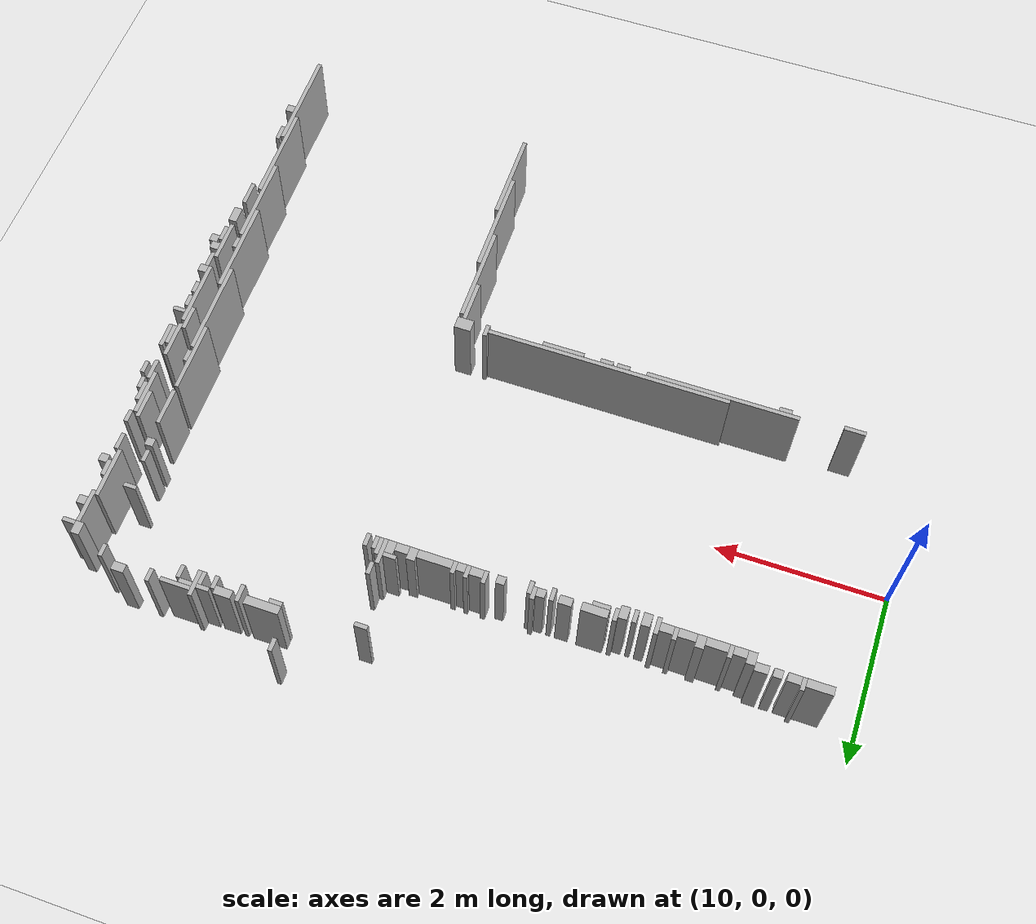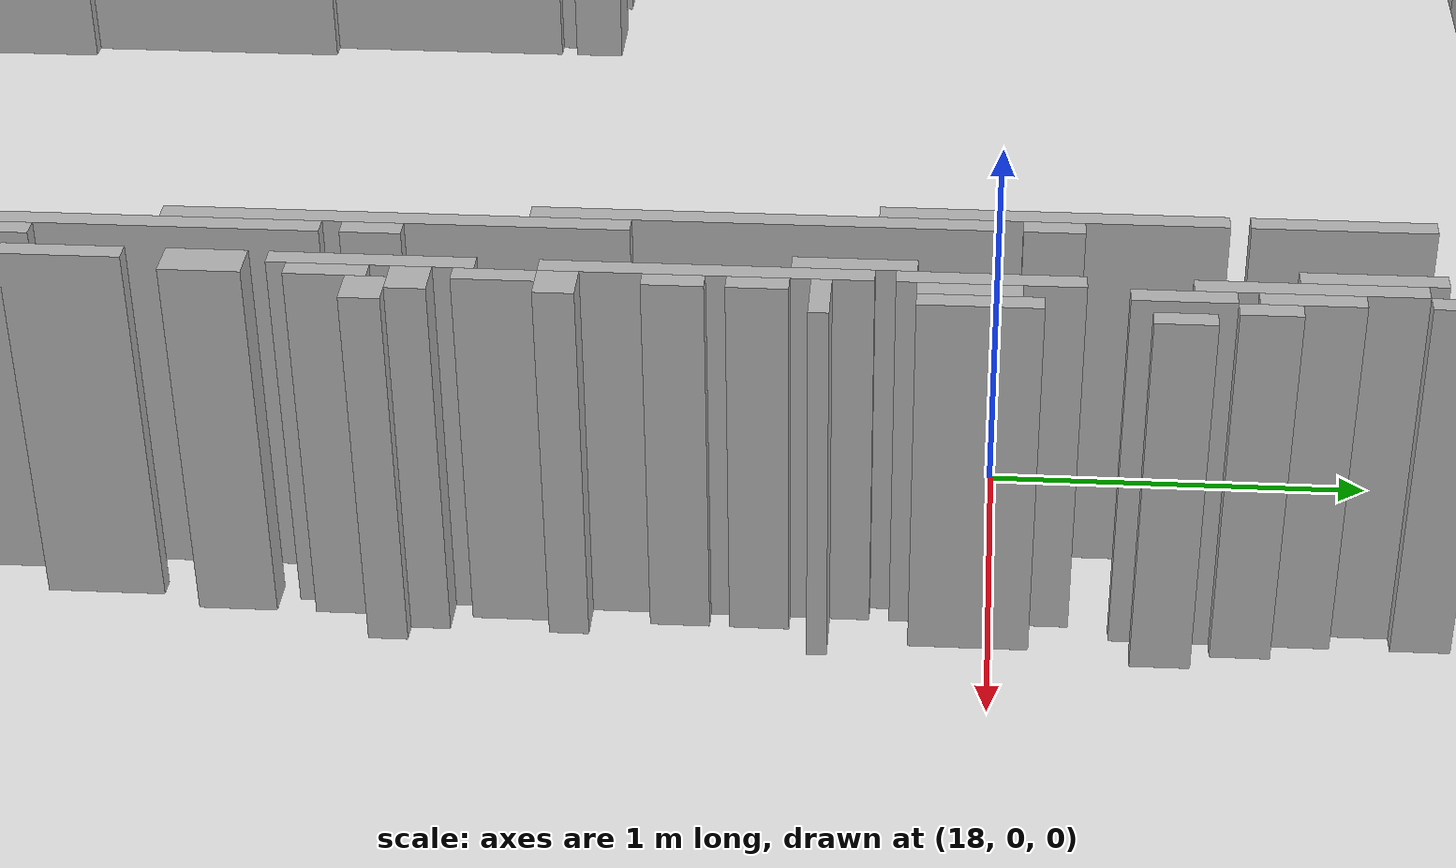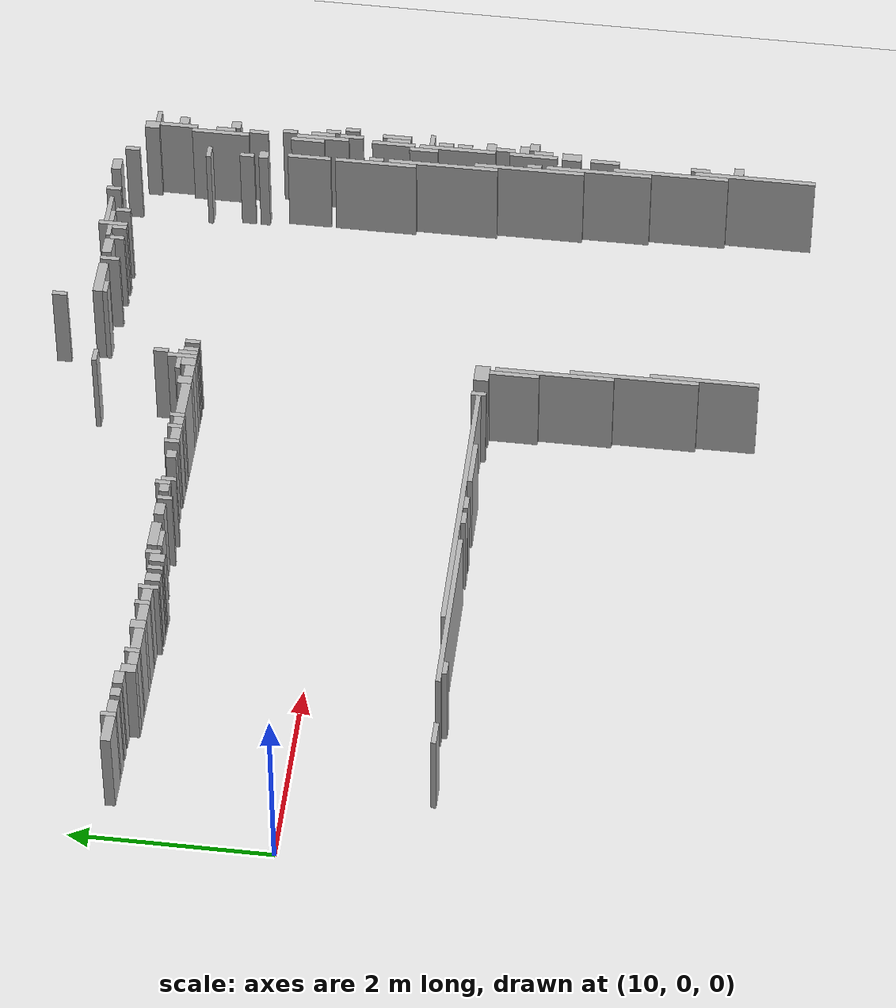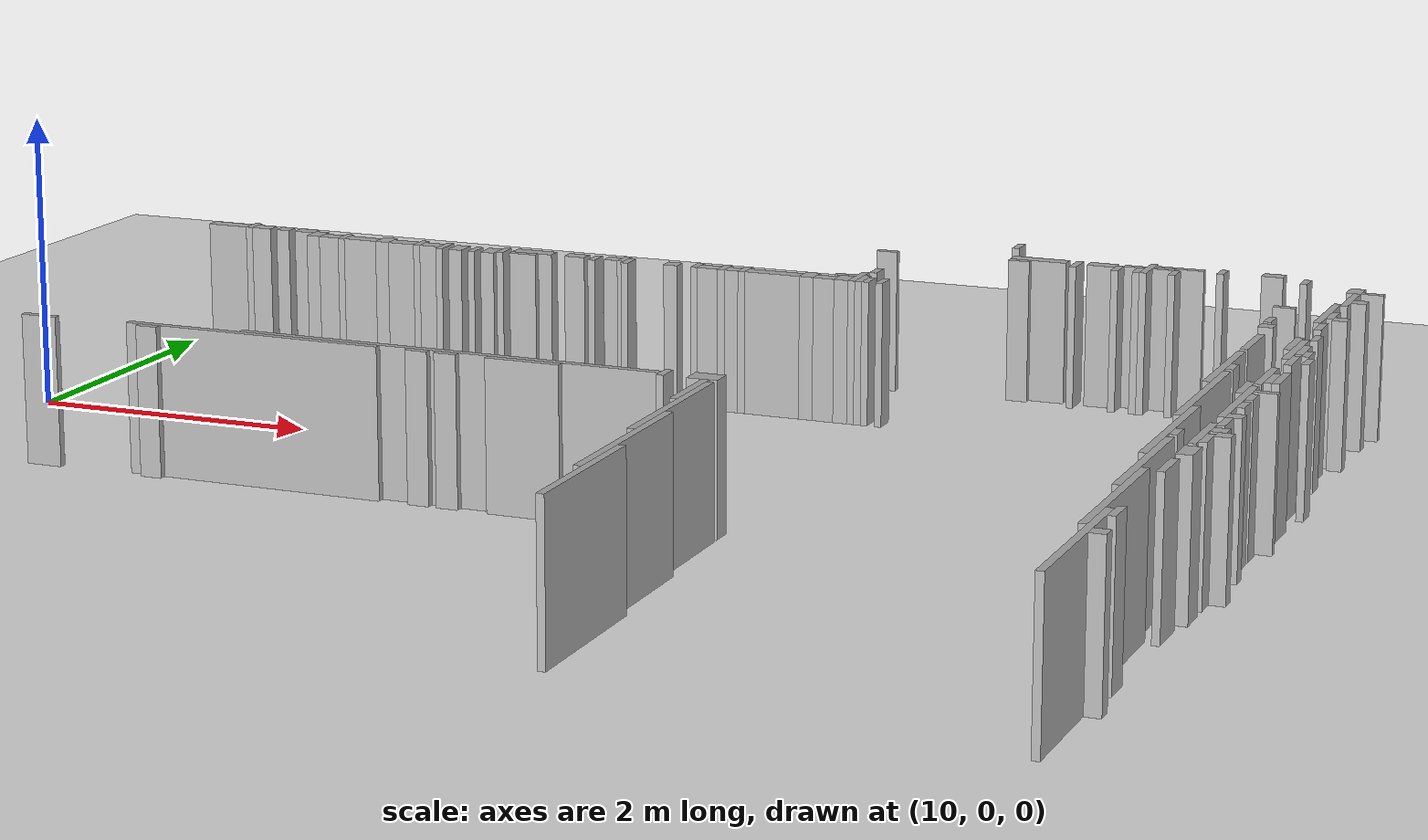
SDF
<sdf version="1.8">
 <world name="building">
  <model name="ground_plane">
   <static>true</static>
   <link name="link">
    <collision name="c"><geometry><plane><normal>0 0 1</normal><size>200 200</size></plane></geometry></collision>
    <visual name="v">
     <geometry><plane><normal>0 0 1</normal><size>200 200</size></plane></geometry>
     <material><ambient>0.9 0.9 0.9 1</ambient><diffuse>0.9 0.9 0.9 1</diffuse></material>
    </visual>
   </link>
  </model>
  <model name="walls">
   <static>true</static>
   <link name="wall_15">
    <pose>16.075 3.075 0.500 0 0 0</pose>
    <collision name="c"><geometry><box><size>0.050 0.150 1.000</size></box></geometry></collision>
    <visual name="v">
     <geometry><box><size>0.050 0.150 1.000</size></box></geometry>
     <material><ambient>0.6 0.6 0.6 1</ambient><diffuse>0.7 0.7 0.7 1</diffuse></material>
    </visual>
   </link>
   <link name="wall_16">
    <pose>17.125 2.700 0.500 0 0 0</pose>
    <collision name="c"><geometry><box><size>0.050 0.300 1.000</size></box></geometry></collision>
    <visual name="v">
     <geometry><box><size>0.050 0.300 1.000</size></box></geometry>
     <material><ambient>0.6 0.6 0.6 1</ambient><diffuse>0.7 0.7 0.7 1</diffuse></material>
    </visual>
   </link>
   <link name="wall_17">
    <pose>17.625 2.775 0.500 0 0 0</pose>
    <collision name="c"><geometry><box><size>0.050 0.150 1.000</size></box></geometry></collision>
    <visual name="v">
     <geometry><box><size>0.050 0.150 1.000</size></box></geometry>
     <material><ambient>0.6 0.6 0.6 1</ambient><diffuse>0.7 0.7 0.7 1</diffuse></material>
    </visual>
   </link>
   <link name="wall_18">
    <pose>17.975 2.800 0.500 0 0 0</pose>
    <collision name="c"><geometry><box><size>0.150 0.100 1.000</size></box></geometry></collision>
    <visual name="v">
     <geometry><box><size>0.150 0.100 1.000</size></box></geometry>
     <material><ambient>0.6 0.6 0.6 1</ambient><diffuse>0.7 0.7 0.7 1</diffuse></material>
    </visual>
   </link>
   <link name="wall_21">
    <pose>17.325 2.775 0.500 0 0 0</pose>
    <collision name="c"><geometry><box><size>0.350 0.050 1.000</size></box></geometry></collision>
    <visual name="v">
     <geometry><box><size>0.350 0.050 1.000</size></box></geometry>
     <material><ambient>0.6 0.6 0.6 1</ambient><diffuse>0.7 0.7 0.7 1</diffuse></material>
    </visual>
   </link>
   <link name="wall_23">
    <pose>16.350 2.700 0.500 0 0 0</pose>
    <collision name="c"><geometry><box><size>0.400 0.100 1.000</size></box></geometry></collision>
    <visual name="v">
     <geometry><box><size>0.400 0.100 1.000</size></box></geometry>
     <material><ambient>0.6 0.6 0.6 1</ambient><diffuse>0.7 0.7 0.7 1</diffuse></material>
    </visual>
   </link>
   <link name="wall_24">
    <pose>16.625 2.650 0.500 0 0 0</pose>
    <collision name="c"><geometry><box><size>0.050 0.200 1.000</size></box></geometry></collision>
    <visual name="v">
     <geometry><box><size>0.050 0.200 1.000</size></box></geometry>
     <material><ambient>0.6 0.6 0.6 1</ambient><diffuse>0.7 0.7 0.7 1</diffuse></material>
    </visual>
   </link>
   <link name="wall_25">
    <pose>16.800 2.700 0.500 0 0 0</pose>
    <collision name="c"><geometry><box><size>0.200 0.100 1.000</size></box></geometry></collision>
    <visual name="v">
     <geometry><box><size>0.200 0.100 1.000</size></box></geometry>
     <material><ambient>0.6 0.6 0.6 1</ambient><diffuse>0.7 0.7 0.7 1</diffuse></material>
    </visual>
   </link>
   <link name="wall_26">
    <pose>17.025 2.725 0.500 0 0 0</pose>
    <collision name="c"><geometry><box><size>0.150 0.050 1.000</size></box></geometry></collision>
    <visual name="v">
     <geometry><box><size>0.150 0.050 1.000</size></box></geometry>
     <material><ambient>0.6 0.6 0.6 1</ambient><diffuse>0.7 0.7 0.7 1</diffuse></material>
    </visual>
   </link>
   <link name="wall_27">
    <pose>17.225 2.725 0.500 0 0 0</pose>
    <collision name="c"><geometry><box><size>0.150 0.050 1.000</size></box></geometry></collision>
    <visual name="v">
     <geometry><box><size>0.150 0.050 1.000</size></box></geometry>
     <material><ambient>0.6 0.6 0.6 1</ambient><diffuse>0.7 0.7 0.7 1</diffuse></material>
    </visual>
   </link>
   <link name="wall_28">
    <pose>18.225 2.675 0.500 0 0 0</pose>
    <collision name="c"><geometry><box><size>0.050 0.150 1.000</size></box></geometry></collision>
    <visual name="v">
     <geometry><box><size>0.050 0.150 1.000</size></box></geometry>
     <material><ambient>0.6 0.6 0.6 1</ambient><diffuse>0.7 0.7 0.7 1</diffuse></material>
    </visual>
   </link>
   <link name="wall_29">
    <pose>16.925 2.625 0.500 0 0 0</pose>
    <collision name="c"><geometry><box><size>0.050 0.150 1.000</size></box></geometry></collision>
    <visual name="v">
     <geometry><box><size>0.050 0.150 1.000</size></box></geometry>
     <material><ambient>0.6 0.6 0.6 1</ambient><diffuse>0.7 0.7 0.7 1</diffuse></material>
    </visual>
   </link>
   <link name="wall_30">
    <pose>17.075 2.625 0.500 0 0 0</pose>
    <collision name="c"><geometry><box><size>0.050 0.150 1.000</size></box></geometry></collision>
    <visual name="v">
     <geometry><box><size>0.050 0.150 1.000</size></box></geometry>
     <material><ambient>0.6 0.6 0.6 1</ambient><diffuse>0.7 0.7 0.7 1</diffuse></material>
    </visual>
   </link>
   <link name="wall_31">
    <pose>17.325 2.625 0.500 0 0 0</pose>
    <collision name="c"><geometry><box><size>0.050 0.150 1.000</size></box></geometry></collision>
    <visual name="v">
     <geometry><box><size>0.050 0.150 1.000</size></box></geometry>
     <material><ambient>0.6 0.6 0.6 1</ambient><diffuse>0.7 0.7 0.7 1</diffuse></material>
    </visual>
   </link>
   <link name="wall_33">
    <pose>16.225 2.625 0.500 0 0 0</pose>
    <collision name="c"><geometry><box><size>0.150 0.050 1.000</size></box></geometry></collision>
    <visual name="v">
     <geometry><box><size>0.150 0.050 1.000</size></box></geometry>
     <material><ambient>0.6 0.6 0.6 1</ambient><diffuse>0.7 0.7 0.7 1</diffuse></material>
    </visual>
   </link>
   <link name="wall_35">
    <pose>15.275 2.575 0.500 0 0 0</pose>
    <collision name="c"><geometry><box><size>0.150 0.050 1.000</size></box></geometry></collision>
    <visual name="v">
     <geometry><box><size>0.150 0.050 1.000</size></box></geometry>
     <material><ambient>0.6 0.6 0.6 1</ambient><diffuse>0.7 0.7 0.7 1</diffuse></material>
    </visual>
   </link>
   <link name="wall_36">
    <pose>18.600 2.525 0.500 0 0 0</pose>
    <collision name="c"><geometry><box><size>0.100 0.150 1.000</size></box></geometry></collision>
    <visual name="v">
     <geometry><box><size>0.100 0.150 1.000</size></box></geometry>
     <material><ambient>0.6 0.6 0.6 1</ambient><diffuse>0.7 0.7 0.7 1</diffuse></material>
    </visual>
   </link>
   <link name="wall_39">
    <pose>18.725 2.475 0.500 0 0 0</pose>
    <collision name="c"><geometry><box><size>0.150 0.050 1.000</size></box></geometry></collision>
    <visual name="v">
     <geometry><box><size>0.150 0.050 1.000</size></box></geometry>
     <material><ambient>0.6 0.6 0.6 1</ambient><diffuse>0.7 0.7 0.7 1</diffuse></material>
    </visual>
   </link>
   <link name="wall_40">
    <pose>18.625 2.250 0.500 0 0 0</pose>
    <collision name="c"><geometry><box><size>0.050 0.400 1.000</size></box></geometry></collision>
    <visual name="v">
     <geometry><box><size>0.050 0.400 1.000</size></box></geometry>
     <material><ambient>0.6 0.6 0.6 1</ambient><diffuse>0.7 0.7 0.7 1</diffuse></material>
    </visual>
   </link>
   <link name="wall_48">
    <pose>18.700 2.200 0.500 0 0 0</pose>
    <collision name="c"><geometry><box><size>0.100 0.100 1.000</size></box></geometry></collision>
    <visual name="v">
     <geometry><box><size>0.100 0.100 1.000</size></box></geometry>
     <material><ambient>0.6 0.6 0.6 1</ambient><diffuse>0.7 0.7 0.7 1</diffuse></material>
    </visual>
   </link>
   <link name="wall_67">
    <pose>18.575 1.800 0.500 0 0 0</pose>
    <collision name="c"><geometry><box><size>0.050 0.600 1.000</size></box></geometry></collision>
    <visual name="v">
     <geometry><box><size>0.050 0.600 1.000</size></box></geometry>
     <material><ambient>0.6 0.6 0.6 1</ambient><diffuse>0.7 0.7 0.7 1</diffuse></material>
    </visual>
   </link>
   <link name="wall_80">
    <pose>15.425 1.925 0.500 0 0 0</pose>
    <collision name="c"><geometry><box><size>0.050 0.150 1.000</size></box></geometry></collision>
    <visual name="v">
     <geometry><box><size>0.050 0.150 1.000</size></box></geometry>
     <material><ambient>0.6 0.6 0.6 1</ambient><diffuse>0.7 0.7 0.7 1</diffuse></material>
    </visual>
   </link>
   <link name="wall_88">
    <pose>18.275 1.875 0.500 0 0 0</pose>
    <collision name="c"><geometry><box><size>0.150 0.050 1.000</size></box></geometry></collision>
    <visual name="v">
     <geometry><box><size>0.150 0.050 1.000</size></box></geometry>
     <material><ambient>0.6 0.6 0.6 1</ambient><diffuse>0.7 0.7 0.7 1</diffuse></material>
    </visual>
   </link>
   <link name="wall_93">
    <pose>15.375 1.700 0.500 0 0 0</pose>
    <collision name="c"><geometry><box><size>0.050 0.300 1.000</size></box></geometry></collision>
    <visual name="v">
     <geometry><box><size>0.050 0.300 1.000</size></box></geometry>
     <material><ambient>0.6 0.6 0.6 1</ambient><diffuse>0.7 0.7 0.7 1</diffuse></material>
    </visual>
   </link>
   <link name="wall_94">
    <pose>18.625 1.750 0.500 0 0 0</pose>
    <collision name="c"><geometry><box><size>0.050 0.200 1.000</size></box></geometry></collision>
    <visual name="v">
     <geometry><box><size>0.050 0.200 1.000</size></box></geometry>
     <material><ambient>0.6 0.6 0.6 1</ambient><diffuse>0.7 0.7 0.7 1</diffuse></material>
    </visual>
   </link>
   <link name="wall_98">
    <pose>10.725 1.675 0.500 0 0 0</pose>
    <collision name="c"><geometry><box><size>0.050 0.150 1.000</size></box></geometry></collision>
    <visual name="v">
     <geometry><box><size>0.050 0.150 1.000</size></box></geometry>
     <material><ambient>0.6 0.6 0.6 1</ambient><diffuse>0.7 0.7 0.7 1</diffuse></material>
    </visual>
   </link>
   <link name="wall_99">
    <pose>15.275 1.725 0.500 0 0 0</pose>
    <collision name="c"><geometry><box><size>0.150 0.050 1.000</size></box></geometry></collision>
    <visual name="v">
     <geometry><box><size>0.150 0.050 1.000</size></box></geometry>
     <material><ambient>0.6 0.6 0.6 1</ambient><diffuse>0.7 0.7 0.7 1</diffuse></material>
    </visual>
   </link>
   <link name="wall_100">
    <pose>15.425 1.650 0.500 0 0 0</pose>
    <collision name="c"><geometry><box><size>0.050 0.200 1.000</size></box></geometry></collision>
    <visual name="v">
     <geometry><box><size>0.050 0.200 1.000</size></box></geometry>
     <material><ambient>0.6 0.6 0.6 1</ambient><diffuse>0.7 0.7 0.7 1</diffuse></material>
    </visual>
   </link>
   <link name="wall_103">
    <pose>10.550 1.650 0.500 0 0 0</pose>
    <collision name="c"><geometry><box><size>0.300 0.100 1.000</size></box></geometry></collision>
    <visual name="v">
     <geometry><box><size>0.300 0.100 1.000</size></box></geometry>
     <material><ambient>0.6 0.6 0.6 1</ambient><diffuse>0.7 0.7 0.7 1</diffuse></material>
    </visual>
   </link>
   <link name="wall_104">
    <pose>10.825 1.650 0.500 0 0 0</pose>
    <collision name="c"><geometry><box><size>0.150 0.100 1.000</size></box></geometry></collision>
    <visual name="v">
     <geometry><box><size>0.150 0.100 1.000</size></box></geometry>
     <material><ambient>0.6 0.6 0.6 1</ambient><diffuse>0.7 0.7 0.7 1</diffuse></material>
    </visual>
   </link>
   <link name="wall_105">
    <pose>11.000 1.650 0.500 0 0 0</pose>
    <collision name="c"><geometry><box><size>0.100 0.100 1.000</size></box></geometry></collision>
    <visual name="v">
     <geometry><box><size>0.100 0.100 1.000</size></box></geometry>
     <material><ambient>0.6 0.6 0.6 1</ambient><diffuse>0.7 0.7 0.7 1</diffuse></material>
    </visual>
   </link>
   <link name="wall_106">
    <pose>11.175 1.650 0.500 0 0 0</pose>
    <collision name="c"><geometry><box><size>0.150 0.100 1.000</size></box></geometry></collision>
    <visual name="v">
     <geometry><box><size>0.150 0.100 1.000</size></box></geometry>
     <material><ambient>0.6 0.6 0.6 1</ambient><diffuse>0.7 0.7 0.7 1</diffuse></material>
    </visual>
   </link>
   <link name="wall_107">
    <pose>13.675 1.625 0.500 0 0 0</pose>
    <collision name="c"><geometry><box><size>0.050 0.150 1.000</size></box></geometry></collision>
    <visual name="v">
     <geometry><box><size>0.050 0.150 1.000</size></box></geometry>
     <material><ambient>0.6 0.6 0.6 1</ambient><diffuse>0.7 0.7 0.7 1</diffuse></material>
    </visual>
   </link>
   <link name="wall_108">
    <pose>14.225 1.625 0.500 0 0 0</pose>
    <collision name="c"><geometry><box><size>0.050 0.150 1.000</size></box></geometry></collision>
    <visual name="v">
     <geometry><box><size>0.050 0.150 1.000</size></box></geometry>
     <material><ambient>0.6 0.6 0.6 1</ambient><diffuse>0.7 0.7 0.7 1</diffuse></material>
    </visual>
   </link>
   <link name="wall_109">
    <pose>14.425 1.625 0.500 0 0 0</pose>
    <collision name="c"><geometry><box><size>0.050 0.150 1.000</size></box></geometry></collision>
    <visual name="v">
     <geometry><box><size>0.050 0.150 1.000</size></box></geometry>
     <material><ambient>0.6 0.6 0.6 1</ambient><diffuse>0.7 0.7 0.7 1</diffuse></material>
    </visual>
   </link>
   <link name="wall_110">
    <pose>14.575 1.625 0.500 0 0 0</pose>
    <collision name="c"><geometry><box><size>0.050 0.150 1.000</size></box></geometry></collision>
    <visual name="v">
     <geometry><box><size>0.050 0.150 1.000</size></box></geometry>
     <material><ambient>0.6 0.6 0.6 1</ambient><diffuse>0.7 0.7 0.7 1</diffuse></material>
    </visual>
   </link>
   <link name="wall_111">
    <pose>15.050 1.625 0.500 0 0 0</pose>
    <collision name="c"><geometry><box><size>0.100 0.150 1.000</size></box></geometry></collision>
    <visual name="v">
     <geometry><box><size>0.100 0.150 1.000</size></box></geometry>
     <material><ambient>0.6 0.6 0.6 1</ambient><diffuse>0.7 0.7 0.7 1</diffuse></material>
    </visual>
   </link>
   <link name="wall_112">
    <pose>15.300 1.625 0.500 0 0 0</pose>
    <collision name="c"><geometry><box><size>0.100 0.150 1.000</size></box></geometry></collision>
    <visual name="v">
     <geometry><box><size>0.100 0.150 1.000</size></box></geometry>
     <material><ambient>0.6 0.6 0.6 1</ambient><diffuse>0.7 0.7 0.7 1</diffuse></material>
    </visual>
   </link>
   <link name="wall_113">
    <pose>15.475 1.625 0.500 0 0 0</pose>
    <collision name="c"><geometry><box><size>0.050 0.150 1.000</size></box></geometry></collision>
    <visual name="v">
     <geometry><box><size>0.050 0.150 1.000</size></box></geometry>
     <material><ambient>0.6 0.6 0.6 1</ambient><diffuse>0.7 0.7 0.7 1</diffuse></material>
    </visual>
   </link>
   <link name="wall_114">
    <pose>15.575 1.625 0.500 0 0 0</pose>
    <collision name="c"><geometry><box><size>0.050 0.150 1.000</size></box></geometry></collision>
    <visual name="v">
     <geometry><box><size>0.050 0.150 1.000</size></box></geometry>
     <material><ambient>0.6 0.6 0.6 1</ambient><diffuse>0.7 0.7 0.7 1</diffuse></material>
    </visual>
   </link>
   <link name="wall_115">
    <pose>18.700 1.650 0.500 0 0 0</pose>
    <collision name="c"><geometry><box><size>0.100 0.100 1.000</size></box></geometry></collision>
    <visual name="v">
     <geometry><box><size>0.100 0.100 1.000</size></box></geometry>
     <material><ambient>0.6 0.6 0.6 1</ambient><diffuse>0.7 0.7 0.7 1</diffuse></material>
    </visual>
   </link>
   <link name="wall_126">
    <pose>11.300 1.575 0.500 0 0 0</pose>
    <collision name="c"><geometry><box><size>0.100 0.150 1.000</size></box></geometry></collision>
    <visual name="v">
     <geometry><box><size>0.100 0.150 1.000</size></box></geometry>
     <material><ambient>0.6 0.6 0.6 1</ambient><diffuse>0.7 0.7 0.7 1</diffuse></material>
    </visual>
   </link>
   <link name="wall_127">
    <pose>11.525 1.575 0.500 0 0 0</pose>
    <collision name="c"><geometry><box><size>0.050 0.150 1.000</size></box></geometry></collision>
    <visual name="v">
     <geometry><box><size>0.050 0.150 1.000</size></box></geometry>
     <material><ambient>0.6 0.6 0.6 1</ambient><diffuse>0.7 0.7 0.7 1</diffuse></material>
    </visual>
   </link>
   <link name="wall_128">
    <pose>11.850 1.575 0.500 0 0 0</pose>
    <collision name="c"><geometry><box><size>0.100 0.150 1.000</size></box></geometry></collision>
    <visual name="v">
     <geometry><box><size>0.100 0.150 1.000</size></box></geometry>
     <material><ambient>0.6 0.6 0.6 1</ambient><diffuse>0.7 0.7 0.7 1</diffuse></material>
    </visual>
   </link>
   <link name="wall_129">
    <pose>12.125 1.575 0.500 0 0 0</pose>
    <collision name="c"><geometry><box><size>0.050 0.150 1.000</size></box></geometry></collision>
    <visual name="v">
     <geometry><box><size>0.050 0.150 1.000</size></box></geometry>
     <material><ambient>0.6 0.6 0.6 1</ambient><diffuse>0.7 0.7 0.7 1</diffuse></material>
    </visual>
   </link>
   <link name="wall_130">
    <pose>12.325 1.550 0.500 0 0 0</pose>
    <collision name="c"><geometry><box><size>0.050 0.200 1.000</size></box></geometry></collision>
    <visual name="v">
     <geometry><box><size>0.050 0.200 1.000</size></box></geometry>
     <material><ambient>0.6 0.6 0.6 1</ambient><diffuse>0.7 0.7 0.7 1</diffuse></material>
    </visual>
   </link>
   <link name="wall_131">
    <pose>12.775 1.575 0.500 0 0 0</pose>
    <collision name="c"><geometry><box><size>0.050 0.150 1.000</size></box></geometry></collision>
    <visual name="v">
     <geometry><box><size>0.050 0.150 1.000</size></box></geometry>
     <material><ambient>0.6 0.6 0.6 1</ambient><diffuse>0.7 0.7 0.7 1</diffuse></material>
    </visual>
   </link>
   <link name="wall_132">
    <pose>13.000 1.600 0.500 0 0 0</pose>
    <collision name="c"><geometry><box><size>0.300 0.100 1.000</size></box></geometry></collision>
    <visual name="v">
     <geometry><box><size>0.300 0.100 1.000</size></box></geometry>
     <material><ambient>0.6 0.6 0.6 1</ambient><diffuse>0.7 0.7 0.7 1</diffuse></material>
    </visual>
   </link>
   <link name="wall_133">
    <pose>13.325 1.600 0.500 0 0 0</pose>
    <collision name="c"><geometry><box><size>0.150 0.100 1.000</size></box></geometry></collision>
    <visual name="v">
     <geometry><box><size>0.150 0.100 1.000</size></box></geometry>
     <material><ambient>0.6 0.6 0.6 1</ambient><diffuse>0.7 0.7 0.7 1</diffuse></material>
    </visual>
   </link>
   <link name="wall_134">
    <pose>13.475 1.575 0.500 0 0 0</pose>
    <collision name="c"><geometry><box><size>0.050 0.150 1.000</size></box></geometry></collision>
    <visual name="v">
     <geometry><box><size>0.050 0.150 1.000</size></box></geometry>
     <material><ambient>0.6 0.6 0.6 1</ambient><diffuse>0.7 0.7 0.7 1</diffuse></material>
    </visual>
   </link>
   <link name="wall_135">
    <pose>13.600 1.600 0.500 0 0 0</pose>
    <collision name="c"><geometry><box><size>0.100 0.100 1.000</size></box></geometry></collision>
    <visual name="v">
     <geometry><box><size>0.100 0.100 1.000</size></box></geometry>
     <material><ambient>0.6 0.6 0.6 1</ambient><diffuse>0.7 0.7 0.7 1</diffuse></material>
    </visual>
   </link>
   <link name="wall_136">
    <pose>13.725 1.575 0.500 0 0 0</pose>
    <collision name="c"><geometry><box><size>0.050 0.150 1.000</size></box></geometry></collision>
    <visual name="v">
     <geometry><box><size>0.050 0.150 1.000</size></box></geometry>
     <material><ambient>0.6 0.6 0.6 1</ambient><diffuse>0.7 0.7 0.7 1</diffuse></material>
    </visual>
   </link>
   <link name="wall_137">
    <pose>14.050 1.600 0.500 0 0 0</pose>
    <collision name="c"><geometry><box><size>0.100 0.100 1.000</size></box></geometry></collision>
    <visual name="v">
     <geometry><box><size>0.100 0.100 1.000</size></box></geometry>
     <material><ambient>0.6 0.6 0.6 1</ambient><diffuse>0.7 0.7 0.7 1</diffuse></material>
    </visual>
   </link>
   <link name="wall_138">
    <pose>14.325 1.600 0.500 0 0 0</pose>
    <collision name="c"><geometry><box><size>0.150 0.100 1.000</size></box></geometry></collision>
    <visual name="v">
     <geometry><box><size>0.150 0.100 1.000</size></box></geometry>
     <material><ambient>0.6 0.6 0.6 1</ambient><diffuse>0.7 0.7 0.7 1</diffuse></material>
    </visual>
   </link>
   <link name="wall_139">
    <pose>14.500 1.600 0.500 0 0 0</pose>
    <collision name="c"><geometry><box><size>0.100 0.100 1.000</size></box></geometry></collision>
    <visual name="v">
     <geometry><box><size>0.100 0.100 1.000</size></box></geometry>
     <material><ambient>0.6 0.6 0.6 1</ambient><diffuse>0.7 0.7 0.7 1</diffuse></material>
    </visual>
   </link>
   <link name="wall_140">
    <pose>14.800 1.600 0.500 0 0 0</pose>
    <collision name="c"><geometry><box><size>0.400 0.100 1.000</size></box></geometry></collision>
    <visual name="v">
     <geometry><box><size>0.400 0.100 1.000</size></box></geometry>
     <material><ambient>0.6 0.6 0.6 1</ambient><diffuse>0.7 0.7 0.7 1</diffuse></material>
    </visual>
   </link>
   <link name="wall_141">
    <pose>15.175 1.600 0.500 0 0 0</pose>
    <collision name="c"><geometry><box><size>0.150 0.100 1.000</size></box></geometry></collision>
    <visual name="v">
     <geometry><box><size>0.150 0.100 1.000</size></box></geometry>
     <material><ambient>0.6 0.6 0.6 1</ambient><diffuse>0.7 0.7 0.7 1</diffuse></material>
    </visual>
   </link>
   <link name="wall_166">
    <pose>11.425 1.550 0.500 0 0 0</pose>
    <collision name="c"><geometry><box><size>0.150 0.100 1.000</size></box></geometry></collision>
    <visual name="v">
     <geometry><box><size>0.150 0.100 1.000</size></box></geometry>
     <material><ambient>0.6 0.6 0.6 1</ambient><diffuse>0.7 0.7 0.7 1</diffuse></material>
    </visual>
   </link>
   <link name="wall_167">
    <pose>11.675 1.550 0.500 0 0 0</pose>
    <collision name="c"><geometry><box><size>0.250 0.100 1.000</size></box></geometry></collision>
    <visual name="v">
     <geometry><box><size>0.250 0.100 1.000</size></box></geometry>
     <material><ambient>0.6 0.6 0.6 1</ambient><diffuse>0.7 0.7 0.7 1</diffuse></material>
    </visual>
   </link>
   <link name="wall_168">
    <pose>12.000 1.550 0.500 0 0 0</pose>
    <collision name="c"><geometry><box><size>0.200 0.100 1.000</size></box></geometry></collision>
    <visual name="v">
     <geometry><box><size>0.200 0.100 1.000</size></box></geometry>
     <material><ambient>0.6 0.6 0.6 1</ambient><diffuse>0.7 0.7 0.7 1</diffuse></material>
    </visual>
   </link>
   <link name="wall_169">
    <pose>12.225 1.550 0.500 0 0 0</pose>
    <collision name="c"><geometry><box><size>0.150 0.100 1.000</size></box></geometry></collision>
    <visual name="v">
     <geometry><box><size>0.150 0.100 1.000</size></box></geometry>
     <material><ambient>0.6 0.6 0.6 1</ambient><diffuse>0.7 0.7 0.7 1</diffuse></material>
    </visual>
   </link>
   <link name="wall_170">
    <pose>12.450 1.525 0.500 0 0 0</pose>
    <collision name="c"><geometry><box><size>0.100 0.150 1.000</size></box></geometry></collision>
    <visual name="v">
     <geometry><box><size>0.100 0.150 1.000</size></box></geometry>
     <material><ambient>0.6 0.6 0.6 1</ambient><diffuse>0.7 0.7 0.7 1</diffuse></material>
    </visual>
   </link>
   <link name="wall_171">
    <pose>12.575 1.525 0.500 0 0 0</pose>
    <collision name="c"><geometry><box><size>0.050 0.150 1.000</size></box></geometry></collision>
    <visual name="v">
     <geometry><box><size>0.050 0.150 1.000</size></box></geometry>
     <material><ambient>0.6 0.6 0.6 1</ambient><diffuse>0.7 0.7 0.7 1</diffuse></material>
    </visual>
   </link>
   <link name="wall_172">
    <pose>12.700 1.525 0.500 0 0 0</pose>
    <collision name="c"><geometry><box><size>0.100 0.150 1.000</size></box></geometry></collision>
    <visual name="v">
     <geometry><box><size>0.100 0.150 1.000</size></box></geometry>
     <material><ambient>0.6 0.6 0.6 1</ambient><diffuse>0.7 0.7 0.7 1</diffuse></material>
    </visual>
   </link>
   <link name="wall_190">
    <pose>12.950 1.525 0.500 0 0 0</pose>
    <collision name="c"><geometry><box><size>0.200 0.050 1.000</size></box></geometry></collision>
    <visual name="v">
     <geometry><box><size>0.200 0.050 1.000</size></box></geometry>
     <material><ambient>0.6 0.6 0.6 1</ambient><diffuse>0.7 0.7 0.7 1</diffuse></material>
    </visual>
   </link>
   <link name="wall_191">
    <pose>18.275 1.475 0.500 0 0 0</pose>
    <collision name="c"><geometry><box><size>0.050 0.150 1.000</size></box></geometry></collision>
    <visual name="v">
     <geometry><box><size>0.050 0.150 1.000</size></box></geometry>
     <material><ambient>0.6 0.6 0.6 1</ambient><diffuse>0.7 0.7 0.7 1</diffuse></material>
    </visual>
   </link>
   <link name="wall_215">
    <pose>18.625 1.400 0.500 0 0 0</pose>
    <collision name="c"><geometry><box><size>0.050 0.200 1.000</size></box></geometry></collision>
    <visual name="v">
     <geometry><box><size>0.050 0.200 1.000</size></box></geometry>
     <material><ambient>0.6 0.6 0.6 1</ambient><diffuse>0.7 0.7 0.7 1</diffuse></material>
    </visual>
   </link>
   <link name="wall_259">
    <pose>18.300 1.300 0.500 0 0 0</pose>
    <collision name="c"><geometry><box><size>0.100 0.100 1.000</size></box></geometry></collision>
    <visual name="v">
     <geometry><box><size>0.100 0.100 1.000</size></box></geometry>
     <material><ambient>0.6 0.6 0.6 1</ambient><diffuse>0.7 0.7 0.7 1</diffuse></material>
    </visual>
   </link>
   <link name="wall_292">
    <pose>18.675 1.075 0.500 0 0 0</pose>
    <collision name="c"><geometry><box><size>0.050 0.150 1.000</size></box></geometry></collision>
    <visual name="v">
     <geometry><box><size>0.050 0.150 1.000</size></box></geometry>
     <material><ambient>0.6 0.6 0.6 1</ambient><diffuse>0.7 0.7 0.7 1</diffuse></material>
    </visual>
   </link>
   <link name="wall_294">
    <pose>18.325 0.825 0.500 0 0 0</pose>
    <collision name="c"><geometry><box><size>0.050 0.450 1.000</size></box></geometry></collision>
    <visual name="v">
     <geometry><box><size>0.050 0.450 1.000</size></box></geometry>
     <material><ambient>0.6 0.6 0.6 1</ambient><diffuse>0.7 0.7 0.7 1</diffuse></material>
    </visual>
   </link>
   <link name="wall_295">
    <pose>18.575 0.875 0.500 0 0 0</pose>
    <collision name="c"><geometry><box><size>0.050 0.350 1.000</size></box></geometry></collision>
    <visual name="v">
     <geometry><box><size>0.050 0.350 1.000</size></box></geometry>
     <material><ambient>0.6 0.6 0.6 1</ambient><diffuse>0.7 0.7 0.7 1</diffuse></material>
    </visual>
   </link>
   <link name="wall_296">
    <pose>18.625 0.725 0.500 0 0 0</pose>
    <collision name="c"><geometry><box><size>0.050 0.550 1.000</size></box></geometry></collision>
    <visual name="v">
     <geometry><box><size>0.050 0.550 1.000</size></box></geometry>
     <material><ambient>0.6 0.6 0.6 1</ambient><diffuse>0.7 0.7 0.7 1</diffuse></material>
    </visual>
   </link>
   <link name="wall_298">
    <pose>18.675 0.725 0.500 0 0 0</pose>
    <collision name="c"><geometry><box><size>0.050 0.250 1.000</size></box></geometry></collision>
    <visual name="v">
     <geometry><box><size>0.050 0.250 1.000</size></box></geometry>
     <material><ambient>0.6 0.6 0.6 1</ambient><diffuse>0.7 0.7 0.7 1</diffuse></material>
    </visual>
   </link>
   <link name="wall_303">
    <pose>18.725 0.625 0.500 0 0 0</pose>
    <collision name="c"><geometry><box><size>0.050 0.150 1.000</size></box></geometry></collision>
    <visual name="v">
     <geometry><box><size>0.050 0.150 1.000</size></box></geometry>
     <material><ambient>0.6 0.6 0.6 1</ambient><diffuse>0.7 0.7 0.7 1</diffuse></material>
    </visual>
   </link>
   <link name="wall_305">
    <pose>18.325 0.125 0.500 0 0 0</pose>
    <collision name="c"><geometry><box><size>0.050 0.850 1.000</size></box></geometry></collision>
    <visual name="v">
     <geometry><box><size>0.050 0.850 1.000</size></box></geometry>
     <material><ambient>0.6 0.6 0.6 1</ambient><diffuse>0.7 0.7 0.7 1</diffuse></material>
    </visual>
   </link>
   <link name="wall_306">
    <pose>18.675 0.425 0.500 0 0 0</pose>
    <collision name="c"><geometry><box><size>0.050 0.250 1.000</size></box></geometry></collision>
    <visual name="v">
     <geometry><box><size>0.050 0.250 1.000</size></box></geometry>
     <material><ambient>0.6 0.6 0.6 1</ambient><diffuse>0.7 0.7 0.7 1</diffuse></material>
    </visual>
   </link>
   <link name="wall_307">
    <pose>18.775 0.425 0.500 0 0 0</pose>
    <collision name="c"><geometry><box><size>0.050 0.150 1.000</size></box></geometry></collision>
    <visual name="v">
     <geometry><box><size>0.050 0.150 1.000</size></box></geometry>
     <material><ambient>0.6 0.6 0.6 1</ambient><diffuse>0.7 0.7 0.7 1</diffuse></material>
    </visual>
   </link>
   <link name="wall_310">
    <pose>18.375 0.125 0.500 0 0 0</pose>
    <collision name="c"><geometry><box><size>0.050 0.150 1.000</size></box></geometry></collision>
    <visual name="v">
     <geometry><box><size>0.050 0.150 1.000</size></box></geometry>
     <material><ambient>0.6 0.6 0.6 1</ambient><diffuse>0.7 0.7 0.7 1</diffuse></material>
    </visual>
   </link>
   <link name="wall_311">
    <pose>18.625 -0.025 0.500 0 0 0</pose>
    <collision name="c"><geometry><box><size>0.050 0.450 1.000</size></box></geometry></collision>
    <visual name="v">
     <geometry><box><size>0.050 0.450 1.000</size></box></geometry>
     <material><ambient>0.6 0.6 0.6 1</ambient><diffuse>0.7 0.7 0.7 1</diffuse></material>
    </visual>
   </link>
   <link name="wall_313">
    <pose>18.725 -0.050 0.500 0 0 0</pose>
    <collision name="c"><geometry><box><size>0.050 0.300 1.000</size></box></geometry></collision>
    <visual name="v">
     <geometry><box><size>0.050 0.300 1.000</size></box></geometry>
     <material><ambient>0.6 0.6 0.6 1</ambient><diffuse>0.7 0.7 0.7 1</diffuse></material>
    </visual>
   </link>
   <link name="wall_314">
    <pose>18.675 -0.075 0.500 0 0 0</pose>
    <collision name="c"><geometry><box><size>0.050 0.250 1.000</size></box></geometry></collision>
    <visual name="v">
     <geometry><box><size>0.050 0.250 1.000</size></box></geometry>
     <material><ambient>0.6 0.6 0.6 1</ambient><diffuse>0.7 0.7 0.7 1</diffuse></material>
    </visual>
   </link>
   <link name="wall_315">
    <pose>18.375 -0.575 0.500 0 0 0</pose>
    <collision name="c"><geometry><box><size>0.050 1.150 1.000</size></box></geometry></collision>
    <visual name="v">
     <geometry><box><size>0.050 1.150 1.000</size></box></geometry>
     <material><ambient>0.6 0.6 0.6 1</ambient><diffuse>0.7 0.7 0.7 1</diffuse></material>
    </visual>
   </link>
   <link name="wall_317">
    <pose>18.575 -0.350 0.500 0 0 0</pose>
    <collision name="c"><geometry><box><size>0.050 0.300 1.000</size></box></geometry></collision>
    <visual name="v">
     <geometry><box><size>0.050 0.300 1.000</size></box></geometry>
     <material><ambient>0.6 0.6 0.6 1</ambient><diffuse>0.7 0.7 0.7 1</diffuse></material>
    </visual>
   </link>
   <link name="wall_319">
    <pose>18.625 -0.700 0.500 0 0 0</pose>
    <collision name="c"><geometry><box><size>0.050 0.800 1.000</size></box></geometry></collision>
    <visual name="v">
     <geometry><box><size>0.050 0.800 1.000</size></box></geometry>
     <material><ambient>0.6 0.6 0.6 1</ambient><diffuse>0.7 0.7 0.7 1</diffuse></material>
    </visual>
   </link>
   <link name="wall_321">
    <pose>18.725 -0.425 0.500 0 0 0</pose>
    <collision name="c"><geometry><box><size>0.150 0.050 1.000</size></box></geometry></collision>
    <visual name="v">
     <geometry><box><size>0.150 0.050 1.000</size></box></geometry>
     <material><ambient>0.6 0.6 0.6 1</ambient><diffuse>0.7 0.7 0.7 1</diffuse></material>
    </visual>
   </link>
   <link name="wall_323">
    <pose>18.675 -0.575 0.500 0 0 0</pose>
    <collision name="c"><geometry><box><size>0.050 0.150 1.000</size></box></geometry></collision>
    <visual name="v">
     <geometry><box><size>0.050 0.150 1.000</size></box></geometry>
     <material><ambient>0.6 0.6 0.6 1</ambient><diffuse>0.7 0.7 0.7 1</diffuse></material>
    </visual>
   </link>
   <link name="wall_332">
    <pose>18.675 -0.775 0.500 0 0 0</pose>
    <collision name="c"><geometry><box><size>0.050 0.150 1.000</size></box></geometry></collision>
    <visual name="v">
     <geometry><box><size>0.050 0.150 1.000</size></box></geometry>
     <material><ambient>0.6 0.6 0.6 1</ambient><diffuse>0.7 0.7 0.7 1</diffuse></material>
    </visual>
   </link>
   <link name="wall_343">
    <pose>18.425 -1.475 0.500 0 0 0</pose>
    <collision name="c"><geometry><box><size>0.050 1.150 1.000</size></box></geometry></collision>
    <visual name="v">
     <geometry><box><size>0.050 1.150 1.000</size></box></geometry>
     <material><ambient>0.6 0.6 0.6 1</ambient><diffuse>0.7 0.7 0.7 1</diffuse></material>
    </visual>
   </link>
   <link name="wall_348">
    <pose>18.700 -1.050 0.500 0 0 0</pose>
    <collision name="c"><geometry><box><size>0.100 0.100 1.000</size></box></geometry></collision>
    <visual name="v">
     <geometry><box><size>0.100 0.100 1.000</size></box></geometry>
     <material><ambient>0.6 0.6 0.6 1</ambient><diffuse>0.7 0.7 0.7 1</diffuse></material>
    </visual>
   </link>
   <link name="wall_352">
    <pose>18.675 -1.200 0.500 0 0 0</pose>
    <collision name="c"><geometry><box><size>0.050 0.200 1.000</size></box></geometry></collision>
    <visual name="v">
     <geometry><box><size>0.050 0.200 1.000</size></box></geometry>
     <material><ambient>0.6 0.6 0.6 1</ambient><diffuse>0.7 0.7 0.7 1</diffuse></material>
    </visual>
   </link>
   <link name="wall_356">
    <pose>15.225 -1.325 0.500 0 0 0</pose>
    <collision name="c"><geometry><box><size>0.050 0.150 1.000</size></box></geometry></collision>
    <visual name="v">
     <geometry><box><size>0.050 0.150 1.000</size></box></geometry>
     <material><ambient>0.6 0.6 0.6 1</ambient><diffuse>0.7 0.7 0.7 1</diffuse></material>
    </visual>
   </link>
   <link name="wall_357">
    <pose>15.500 -1.325 0.500 0 0 0</pose>
    <collision name="c"><geometry><box><size>0.200 0.150 1.000</size></box></geometry></collision>
    <visual name="v">
     <geometry><box><size>0.200 0.150 1.000</size></box></geometry>
     <material><ambient>0.6 0.6 0.6 1</ambient><diffuse>0.7 0.7 0.7 1</diffuse></material>
    </visual>
   </link>
   <link name="wall_358">
    <pose>18.625 -1.500 0.500 0 0 0</pose>
    <collision name="c"><geometry><box><size>0.050 0.500 1.000</size></box></geometry></collision>
    <visual name="v">
     <geometry><box><size>0.050 0.500 1.000</size></box></geometry>
     <material><ambient>0.6 0.6 0.6 1</ambient><diffuse>0.7 0.7 0.7 1</diffuse></material>
    </visual>
   </link>
   <link name="wall_361">
    <pose>13.750 -1.325 0.500 0 0 0</pose>
    <collision name="c"><geometry><box><size>2.900 0.050 1.000</size></box></geometry></collision>
    <visual name="v">
     <geometry><box><size>2.900 0.050 1.000</size></box></geometry>
     <material><ambient>0.6 0.6 0.6 1</ambient><diffuse>0.7 0.7 0.7 1</diffuse></material>
    </visual>
   </link>
   <link name="wall_364">
    <pose>12.400 -1.375 0.500 0 0 0</pose>
    <collision name="c"><geometry><box><size>1.800 0.050 1.000</size></box></geometry></collision>
    <visual name="v">
     <geometry><box><size>1.800 0.050 1.000</size></box></geometry>
     <material><ambient>0.6 0.6 0.6 1</ambient><diffuse>0.7 0.7 0.7 1</diffuse></material>
    </visual>
   </link>
   <link name="wall_365">
    <pose>13.575 -1.375 0.500 0 0 0</pose>
    <collision name="c"><geometry><box><size>0.150 0.050 1.000</size></box></geometry></collision>
    <visual name="v">
     <geometry><box><size>0.150 0.050 1.000</size></box></geometry>
     <material><ambient>0.6 0.6 0.6 1</ambient><diffuse>0.7 0.7 0.7 1</diffuse></material>
    </visual>
   </link>
   <link name="wall_366">
    <pose>13.775 -1.375 0.500 0 0 0</pose>
    <collision name="c"><geometry><box><size>0.150 0.050 1.000</size></box></geometry></collision>
    <visual name="v">
     <geometry><box><size>0.150 0.050 1.000</size></box></geometry>
     <material><ambient>0.6 0.6 0.6 1</ambient><diffuse>0.7 0.7 0.7 1</diffuse></material>
    </visual>
   </link>
   <link name="wall_367">
    <pose>14.300 -1.375 0.500 0 0 0</pose>
    <collision name="c"><geometry><box><size>0.500 0.050 1.000</size></box></geometry></collision>
    <visual name="v">
     <geometry><box><size>0.500 0.050 1.000</size></box></geometry>
     <material><ambient>0.6 0.6 0.6 1</ambient><diffuse>0.7 0.7 0.7 1</diffuse></material>
    </visual>
   </link>
   <link name="wall_368">
    <pose>18.700 -1.400 0.500 0 0 0</pose>
    <collision name="c"><geometry><box><size>0.100 0.100 1.000</size></box></geometry></collision>
    <visual name="v">
     <geometry><box><size>0.100 0.100 1.000</size></box></geometry>
     <material><ambient>0.6 0.6 0.6 1</ambient><diffuse>0.7 0.7 0.7 1</diffuse></material>
    </visual>
   </link>
   <link name="wall_376">
    <pose>10.875 -1.425 0.500 0 0 0</pose>
    <collision name="c"><geometry><box><size>0.250 0.050 1.000</size></box></geometry></collision>
    <visual name="v">
     <geometry><box><size>0.250 0.050 1.000</size></box></geometry>
     <material><ambient>0.6 0.6 0.6 1</ambient><diffuse>0.7 0.7 0.7 1</diffuse></material>
    </visual>
   </link>
   <link name="wall_377">
    <pose>11.675 -1.425 0.500 0 0 0</pose>
    <collision name="c"><geometry><box><size>0.150 0.050 1.000</size></box></geometry></collision>
    <visual name="v">
     <geometry><box><size>0.150 0.050 1.000</size></box></geometry>
     <material><ambient>0.6 0.6 0.6 1</ambient><diffuse>0.7 0.7 0.7 1</diffuse></material>
    </visual>
   </link>
   <link name="wall_378">
    <pose>15.525 -1.650 0.500 0 0 0</pose>
    <collision name="c"><geometry><box><size>0.050 0.500 1.000</size></box></geometry></collision>
    <visual name="v">
     <geometry><box><size>0.050 0.500 1.000</size></box></geometry>
     <material><ambient>0.6 0.6 0.6 1</ambient><diffuse>0.7 0.7 0.7 1</diffuse></material>
    </visual>
   </link>
   <link name="wall_390">
    <pose>15.575 -2.050 0.500 0 0 0</pose>
    <collision name="c"><geometry><box><size>0.050 1.200 1.000</size></box></geometry></collision>
    <visual name="v">
     <geometry><box><size>0.050 1.200 1.000</size></box></geometry>
     <material><ambient>0.6 0.6 0.6 1</ambient><diffuse>0.7 0.7 0.7 1</diffuse></material>
    </visual>
   </link>
   <link name="wall_391">
    <pose>18.475 -1.525 0.500 0 0 0</pose>
    <collision name="c"><geometry><box><size>0.050 0.150 1.000</size></box></geometry></collision>
    <visual name="v">
     <geometry><box><size>0.050 0.150 1.000</size></box></geometry>
     <material><ambient>0.6 0.6 0.6 1</ambient><diffuse>0.7 0.7 0.7 1</diffuse></material>
    </visual>
   </link>
   <link name="wall_392">
    <pose>18.750 -1.500 0.500 0 0 0</pose>
    <collision name="c"><geometry><box><size>0.100 0.100 1.000</size></box></geometry></collision>
    <visual name="v">
     <geometry><box><size>0.100 0.100 1.000</size></box></geometry>
     <material><ambient>0.6 0.6 0.6 1</ambient><diffuse>0.7 0.7 0.7 1</diffuse></material>
    </visual>
   </link>
   <link name="wall_400">
    <pose>18.675 -1.600 0.500 0 0 0</pose>
    <collision name="c"><geometry><box><size>0.050 0.200 1.000</size></box></geometry></collision>
    <visual name="v">
     <geometry><box><size>0.050 0.200 1.000</size></box></geometry>
     <material><ambient>0.6 0.6 0.6 1</ambient><diffuse>0.7 0.7 0.7 1</diffuse></material>
    </visual>
   </link>
   <link name="wall_419">
    <pose>18.475 -2.200 0.500 0 0 0</pose>
    <collision name="c"><geometry><box><size>0.050 1.100 1.000</size></box></geometry></collision>
    <visual name="v">
     <geometry><box><size>0.050 1.100 1.000</size></box></geometry>
     <material><ambient>0.6 0.6 0.6 1</ambient><diffuse>0.7 0.7 0.7 1</diffuse></material>
    </visual>
   </link>
   <link name="wall_430">
    <pose>18.650 -1.900 0.500 0 0 0</pose>
    <collision name="c"><geometry><box><size>0.100 0.200 1.000</size></box></geometry></collision>
    <visual name="v">
     <geometry><box><size>0.100 0.200 1.000</size></box></geometry>
     <material><ambient>0.6 0.6 0.6 1</ambient><diffuse>0.7 0.7 0.7 1</diffuse></material>
    </visual>
   </link>
   <link name="wall_434">
    <pose>18.625 -2.250 0.500 0 0 0</pose>
    <collision name="c"><geometry><box><size>0.050 0.300 1.000</size></box></geometry></collision>
    <visual name="v">
     <geometry><box><size>0.050 0.300 1.000</size></box></geometry>
     <material><ambient>0.6 0.6 0.6 1</ambient><diffuse>0.7 0.7 0.7 1</diffuse></material>
    </visual>
   </link>
   <link name="wall_439">
    <pose>15.625 -2.850 0.500 0 0 0</pose>
    <collision name="c"><geometry><box><size>0.050 1.300 1.000</size></box></geometry></collision>
    <visual name="v">
     <geometry><box><size>0.050 1.300 1.000</size></box></geometry>
     <material><ambient>0.6 0.6 0.6 1</ambient><diffuse>0.7 0.7 0.7 1</diffuse></material>
    </visual>
   </link>
   <link name="wall_448">
    <pose>18.525 -2.950 0.500 0 0 0</pose>
    <collision name="c"><geometry><box><size>0.050 1.200 1.000</size></box></geometry></collision>
    <visual name="v">
     <geometry><box><size>0.050 1.200 1.000</size></box></geometry>
     <material><ambient>0.6 0.6 0.6 1</ambient><diffuse>0.7 0.7 0.7 1</diffuse></material>
    </visual>
   </link>
   <link name="wall_454">
    <pose>15.675 -3.550 0.500 0 0 0</pose>
    <collision name="c"><geometry><box><size>0.050 1.100 1.000</size></box></geometry></collision>
    <visual name="v">
     <geometry><box><size>0.050 1.100 1.000</size></box></geometry>
     <material><ambient>0.6 0.6 0.6 1</ambient><diffuse>0.7 0.7 0.7 1</diffuse></material>
    </visual>
   </link>
   <link name="wall_455">
    <pose>18.625 -3.250 0.500 0 0 0</pose>
    <collision name="c"><geometry><box><size>0.050 0.200 1.000</size></box></geometry></collision>
    <visual name="v">
     <geometry><box><size>0.050 0.200 1.000</size></box></geometry>
     <material><ambient>0.6 0.6 0.6 1</ambient><diffuse>0.7 0.7 0.7 1</diffuse></material>
    </visual>
   </link>
   <link name="wall_456">
    <pose>18.575 -3.825 0.500 0 0 0</pose>
    <collision name="c"><geometry><box><size>0.050 1.250 1.000</size></box></geometry></collision>
    <visual name="v">
     <geometry><box><size>0.050 1.250 1.000</size></box></geometry>
     <material><ambient>0.6 0.6 0.6 1</ambient><diffuse>0.7 0.7 0.7 1</diffuse></material>
    </visual>
   </link>
   <link name="wall_458">
    <pose>18.650 -3.650 0.500 0 0 0</pose>
    <collision name="c"><geometry><box><size>0.100 0.100 1.000</size></box></geometry></collision>
    <visual name="v">
     <geometry><box><size>0.100 0.100 1.000</size></box></geometry>
     <material><ambient>0.6 0.6 0.6 1</ambient><diffuse>0.7 0.7 0.7 1</diffuse></material>
    </visual>
   </link>
  </model>
 </world>
</sdf>
